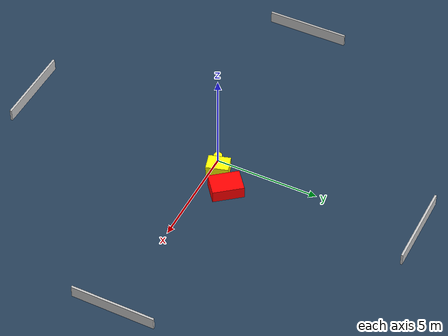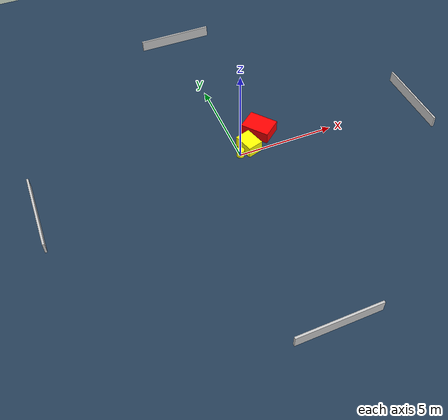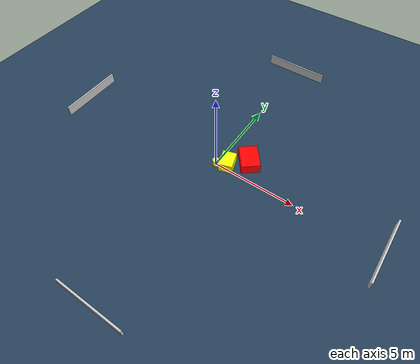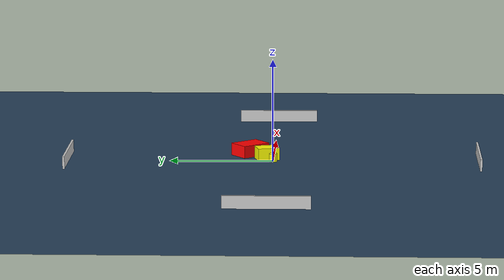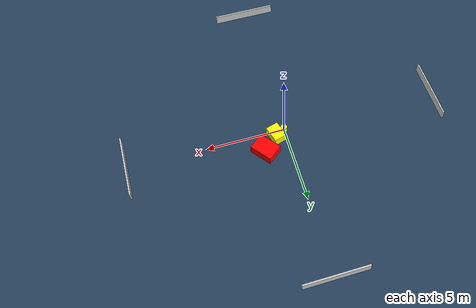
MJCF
<?xml version="1.0" ?>
<mujoco model="generated_environment">
  <option timestep="0.01" integrator="RK4" cone="elliptic"/>
  <default>
    <geom density="1"/>
  </default>
  <asset>
    <texture builtin="gradient" height="3072" name="skybox" rgb1="0.3 0.5 0.7" rgb2="0 0 0" type="skybox" width="512"/>
    <texture builtin="checker" height="300" name="groundplane" rgb1="0.2 0.3 0.4" rgb2="0.1 0.2 0.3" type="2d" width="300"/>
    <material name="groundplane" reflectance="0.2" texrepeat="5 5" texture="groundplane"/>
  </asset>
  <worldbody>
    <light dir="0 0 -1" directional="true" pos="0 0 1.5"/>
    <geom condim="3" friction="0.5 0.005 0.001" material="groundplane" name="floor" pos="0 0 0" size="0 0 0.05" type="plane"/>
    <body name="walls">
      <geom name="wall_1" condim="4" pos="-10.0 0.0 0.3" rgba="0.800000011920929 0.800000011920929 0.800000011920929 1.0" size="0.05 2.0 0.3" type="box"/>
      <geom name="wall_2" condim="4" pos="10.0 0.0 0.3" rgba="0.800000011920929 0.800000011920929 0.800000011920929 1.0" size="0.05 2.0 0.3" type="box"/>
      <geom name="wall_3" condim="4" pos="0.0 -10.0 0.3" rgba="0.800000011920929 0.800000011920929 0.800000011920929 1.0" size="2.0 0.05 0.3" type="box"/>
      <geom name="wall_4" condim="4" pos="0.0 10.0 0.3" rgba="0.800000011920929 0.800000011920929 0.800000011920929 1.0" size="2.0 0.05 0.3" type="box"/>
    </body>
    <body name="robot">
      <joint name="joint_x" type="slide" pos="0 0 0" axis="1 0 0"/>
      <joint name="joint_y" type="slide" pos="0 0 0" axis="0 1 0"/>
      <geom name="robot" type="cylinder" pos="0.0 0.0 0.2" size="0.2 0.2 0.0" mass="5.0" friction="1.0 0.005 0.0001" condim="4" rgba="1.0 1.0 0.0 1.0"/>
    </body>
    <body name="obstacle_1_movable">
      <geom name="obstacle_1_movable" condim="4" pos="0.5975666094805735 0.3165606241230494 0.3" euler="0 0 286.588420425727" friction="0.0 0.005 0.001" rgba="1.0 1.0 0.0 1.0" size="0.5320751028942938 0.4053794497187443 0.3" type="box" mass="0.1"/>
      <joint type="free"/>
    </body>
    <body name="obstacle_2_static">
      <geom name="obstacle_2_static" condim="4" pos="1.5255278311866243 1.1710300876718926 0.3" euler="0 0 308.6825124827584" friction="0.0 0.005 0.001" rgba="1.0 0.0 0.0 1.0" size="0.7429459377303924 0.5521114301370034 0.3" type="box"/>
    </body>
  </worldbody>
  <actuator>
    <motor name="actuator_x" joint="joint_x" gear="1" ctrlrange="-1 1"/>
    <motor name="actuator_y" joint="joint_y" gear="1" ctrlrange="-1 1"/>
  </actuator>
</mujoco>
